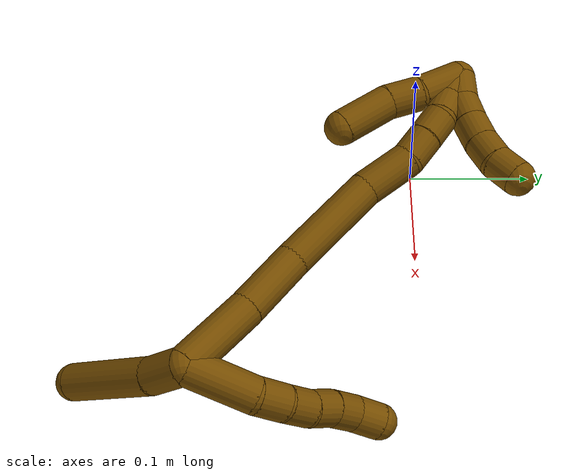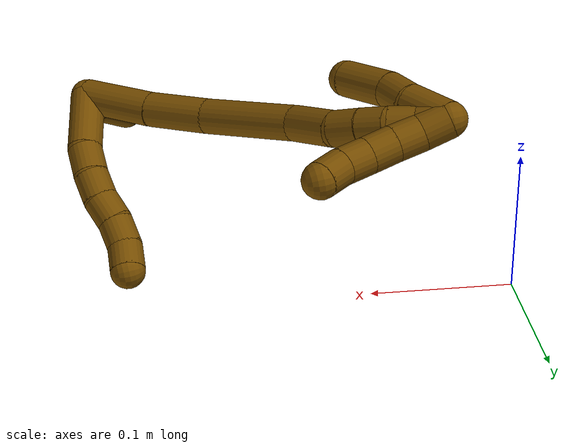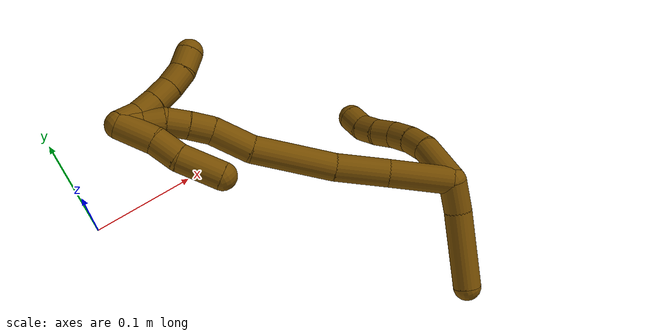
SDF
<sdf version="1.7">
 <world name="default">
  <model name="12">
   <static>0</static>
   <link name="12">
    <collision name="collision-cylinder-e_1_2_8">
     <pose>0.000995 0.023226 0.006195 -1.31014 0.041384 -0.031794</pose>
     <geometry><cylinder><radius>0.0125</radius><length>0.048117</length></cylinder></geometry>
     <surface>
      <friction><ode><mu>1.16</mu><mu2>1.16</mu2><slip1>0</slip1><slip2>0</slip2></ode></friction>
      <contact><ode><kp>1e+06</kp><kd>1</kd><max_vel>0</max_vel><min_depth>0.001</min_depth></ode></contact>
     </surface>
    </collision>
    <visual name="visual-cylinder-e_1_2_8">
     <pose>0.000995 0.023226 0.006195 -1.31014 0.041384 -0.031794</pose>
     <geometry><cylinder><radius>0.0125</radius><length>0.048117</length></cylinder></geometry>
     <material><ambient>0.466667 0.301961 0 1</ambient></material>
    </visual>
    <collision name="collision-cylinder-e_2_8_9">
     <pose>0.003528 0.057031 0.0126 -1.55088 0.144298 -0.141461</pose>
     <geometry><cylinder><radius>0.0125</radius><length>0.021385</length></cylinder></geometry>
     <surface>
      <friction><ode><mu>1.16</mu><mu2>1.16</mu2><slip1>0</slip1><slip2>0</slip2></ode></friction>
      <contact><ode><kp>1e+06</kp><kd>1</kd><max_vel>0</max_vel><min_depth>0.001</min_depth></ode></contact>
     </surface>
    </collision>
    <visual name="visual-cylinder-e_2_8_9">
     <pose>0.003528 0.057031 0.0126 -1.55088 0.144298 -0.141461</pose>
     <geometry><cylinder><radius>0.0125</radius><length>0.021385</length></cylinder></geometry>
     <material><ambient>0.466667 0.301961 0 1</ambient></material>
    </visual>
    <collision name="collision-cylinder-e_3_9_10">
     <pose>0.007686 0.07734 0.011676 -1.68692 0.261363 -0.293187</pose>
     <geometry><cylinder><radius>0.0125</radius><length>0.020279</length></cylinder></geometry>
     <surface>
      <friction><ode><mu>1.16</mu><mu2>1.16</mu2><slip1>0</slip1><slip2>0</slip2></ode></friction>
      <contact><ode><kp>1e+06</kp><kd>1</kd><max_vel>0</max_vel><min_depth>0.001</min_depth></ode></contact>
     </surface>
    </collision>
    <visual name="visual-cylinder-e_3_9_10">
     <pose>0.007686 0.07734 0.011676 -1.68692 0.261363 -0.293187</pose>
     <geometry><cylinder><radius>0.0125</radius><length>0.020279</length></cylinder></geometry>
     <material><ambient>0.466667 0.301961 0 1</ambient></material>
    </visual>
    <collision name="collision-cylinder-e_4_10_11">
     <pose>0.012548 0.096379 0.007553 -1.88144 0.22541 -0.307966</pose>
     <geometry><cylinder><radius>0.0125</radius><length>0.020063</length></cylinder></geometry>
     <surface>
      <friction><ode><mu>1.16</mu><mu2>1.16</mu2><slip1>0</slip1><slip2>0</slip2></ode></friction>
      <contact><ode><kp>1e+06</kp><kd>1</kd><max_vel>0</max_vel><min_depth>0.001</min_depth></ode></contact>
     </surface>
    </collision>
    <visual name="visual-cylinder-e_4_10_11">
     <pose>0.012548 0.096379 0.007553 -1.88144 0.22541 -0.307966</pose>
     <geometry><cylinder><radius>0.0125</radius><length>0.020063</length></cylinder></geometry>
     <material><ambient>0.466667 0.301961 0 1</ambient></material>
    </visual>
    <collision name="collision-cylinder-e_5_11_12">
     <pose>0.017376 0.115313 0.003395 -1.69164 0.260715 -0.293836</pose>
     <geometry><cylinder><radius>0.0125</radius><length>0.020068</length></cylinder></geometry>
     <surface>
      <friction><ode><mu>1.16</mu><mu2>1.16</mu2><slip1>0</slip1><slip2>0</slip2></ode></friction>
      <contact><ode><kp>1e+06</kp><kd>1</kd><max_vel>0</max_vel><min_depth>0.001</min_depth></ode></contact>
     </surface>
    </collision>
    <visual name="visual-cylinder-e_5_11_12">
     <pose>0.017376 0.115313 0.003395 -1.69164 0.260715 -0.293836</pose>
     <geometry><cylinder><radius>0.0125</radius><length>0.020068</length></cylinder></geometry>
     <material><ambient>0.466667 0.301961 0 1</ambient></material>
    </visual>
    <collision name="collision-cylinder-e_6_12_6">
     <pose>0.020694 0.134871 0.003515 -1.44185 0.072854 -0.064024</pose>
     <geometry><cylinder><radius>0.0125</radius><length>0.020088</length></cylinder></geometry>
     <surface>
      <friction><ode><mu>1.16</mu><mu2>1.16</mu2><slip1>0</slip1><slip2>0</slip2></ode></friction>
      <contact><ode><kp>1e+06</kp><kd>1</kd><max_vel>0</max_vel><min_depth>0.001</min_depth></ode></contact>
     </surface>
    </collision>
    <visual name="visual-cylinder-e_6_12_6">
     <pose>0.020694 0.134871 0.003515 -1.44185 0.072854 -0.064024</pose>
     <geometry><cylinder><radius>0.0125</radius><length>0.020088</length></cylinder></geometry>
     <material><ambient>0.466667 0.301961 0 1</ambient></material>
    </visual>
    <collision name="collision-cylinder-e_1_2_13">
     <pose>0.012838 -0.005892 -0.003412 2.09566 1.08318 1.61338</pose>
     <geometry><cylinder><radius>0.0125</radius><length>0.029064</length></cylinder></geometry>
     <surface>
      <friction><ode><mu>1.16</mu><mu2>1.16</mu2><slip1>0</slip1><slip2>0</slip2></ode></friction>
      <contact><ode><kp>1e+06</kp><kd>1</kd><max_vel>0</max_vel><min_depth>0.001</min_depth></ode></contact>
     </surface>
    </collision>
    <visual name="visual-cylinder-e_1_2_13">
     <pose>0.012838 -0.005892 -0.003412 2.09566 1.08318 1.61338</pose>
     <geometry><cylinder><radius>0.0125</radius><length>0.029064</length></cylinder></geometry>
     <material><ambient>0.466667 0.301961 0 1</ambient></material>
    </visual>
    <collision name="collision-cylinder-e_2_13_5">
     <pose>0.054271 -0.028393 -0.019648 2.22832 0.937696 1.60137</pose>
     <geometry><cylinder><radius>0.0125</radius><length>0.070936</length></cylinder></geometry>
     <surface>
      <friction><ode><mu>1.16</mu><mu2>1.16</mu2><slip1>0</slip1><slip2>0</slip2></ode></friction>
      <contact><ode><kp>1e+06</kp><kd>1</kd><max_vel>0</max_vel><min_depth>0.001</min_depth></ode></contact>
     </surface>
    </collision>
    <visual name="visual-cylinder-e_2_13_5">
     <pose>0.054271 -0.028393 -0.019648 2.22832 0.937696 1.60137</pose>
     <geometry><cylinder><radius>0.0125</radius><length>0.070936</length></cylinder></geometry>
     <material><ambient>0.466667 0.301961 0 1</ambient></material>
    </visual>
    <collision name="collision-cylinder-e_1_2_14">
     <pose>-0.007451 0.018712 -0.020153 -2.39327 -0.264599 0.653522</pose>
     <geometry><cylinder><radius>0.0125</radius><length>0.056984</length></cylinder></geometry>
     <surface>
      <friction><ode><mu>1.16</mu><mu2>1.16</mu2><slip1>0</slip1><slip2>0</slip2></ode></friction>
      <contact><ode><kp>1e+06</kp><kd>1</kd><max_vel>0</max_vel><min_depth>0.001</min_depth></ode></contact>
     </surface>
    </collision>
    <visual name="visual-cylinder-e_1_2_14">
     <pose>-0.007451 0.018712 -0.020153 -2.39327 -0.264599 0.653522</pose>
     <geometry><cylinder><radius>0.0125</radius><length>0.056984</length></cylinder></geometry>
     <material><ambient>0.466667 0.301961 0 1</ambient></material>
    </visual>
    <collision name="collision-cylinder-e_2_14_15">
     <pose>-0.022275 0.05201 -0.05792 -2.44995 -0.311855 0.822821</pose>
     <geometry><cylinder><radius>0.0125</radius><length>0.048058</length></cylinder></geometry>
     <surface>
      <friction><ode><mu>1.16</mu><mu2>1.16</mu2><slip1>0</slip1><slip2>0</slip2></ode></friction>
      <contact><ode><kp>1e+06</kp><kd>1</kd><max_vel>0</max_vel><min_depth>0.001</min_depth></ode></contact>
     </surface>
    </collision>
    <visual name="visual-cylinder-e_2_14_15">
     <pose>-0.022275 0.05201 -0.05792 -2.44995 -0.311855 0.822821</pose>
     <geometry><cylinder><radius>0.0125</radius><length>0.048058</length></cylinder></geometry>
     <material><ambient>0.466667 0.301961 0 1</ambient></material>
    </visual>
    <collision name="collision-cylinder-e_3_15_16">
     <pose>-0.044648 0.089764 -0.100876 -2.40098 -0.411891 0.987354</pose>
     <geometry><cylinder><radius>0.0125</radius><length>0.074938</length></cylinder></geometry>
     <surface>
      <friction><ode><mu>1.16</mu><mu2>1.16</mu2><slip1>0</slip1><slip2>0</slip2></ode></friction>
      <contact><ode><kp>1e+06</kp><kd>1</kd><max_vel>0</max_vel><min_depth>0.001</min_depth></ode></contact>
     </surface>
    </collision>
    <visual name="visual-cylinder-e_3_15_16">
     <pose>-0.044648 0.089764 -0.100876 -2.40098 -0.411891 0.987354</pose>
     <geometry><cylinder><radius>0.0125</radius><length>0.074938</length></cylinder></geometry>
     <material><ambient>0.466667 0.301961 0 1</ambient></material>
    </visual>
    <collision name="collision-cylinder-e_4_16_17">
     <pose>-0.069379 0.126276 -0.135638 -2.18549 -0.537228 0.976688</pose>
     <geometry><cylinder><radius>0.0125</radius><length>0.038026</length></cylinder></geometry>
     <surface>
      <friction><ode><mu>1.16</mu><mu2>1.16</mu2><slip1>0</slip1><slip2>0</slip2></ode></friction>
      <contact><ode><kp>1e+06</kp><kd>1</kd><max_vel>0</max_vel><min_depth>0.001</min_depth></ode></contact>
     </surface>
    </collision>
    <visual name="visual-cylinder-e_4_16_17">
     <pose>-0.069379 0.126276 -0.135638 -2.18549 -0.537228 0.976688</pose>
     <geometry><cylinder><radius>0.0125</radius><length>0.038026</length></cylinder></geometry>
     <material><ambient>0.466667 0.301961 0 1</ambient></material>
    </visual>
    <collision name="collision-cylinder-e_5_17_18">
     <pose>-0.084456 0.145205 -0.152697 -2.51034 -0.514318 1.35599</pose>
     <geometry><cylinder><radius>0.0125</radius><length>0.021738</length></cylinder></geometry>
     <surface>
      <friction><ode><mu>1.16</mu><mu2>1.16</mu2><slip1>0</slip1><slip2>0</slip2></ode></friction>
      <contact><ode><kp>1e+06</kp><kd>1</kd><max_vel>0</max_vel><min_depth>0.001</min_depth></ode></contact>
     </surface>
    </collision>
    <visual name="visual-cylinder-e_5_17_18">
     <pose>-0.084456 0.145205 -0.152697 -2.51034 -0.514318 1.35599</pose>
     <geometry><cylinder><radius>0.0125</radius><length>0.021738</length></cylinder></geometry>
     <material><ambient>0.466667 0.301961 0 1</ambient></material>
    </visual>
    <collision name="collision-cylinder-e_6_18_19">
     <pose>-0.094224 0.155916 -0.167799 -2.53963 -0.454263 1.28002</pose>
     <geometry><cylinder><radius>0.0125</radius><length>0.020151</length></cylinder></geometry>
     <surface>
      <friction><ode><mu>1.16</mu><mu2>1.16</mu2><slip1>0</slip1><slip2>0</slip2></ode></friction>
      <contact><ode><kp>1e+06</kp><kd>1</kd><max_vel>0</max_vel><min_depth>0.001</min_depth></ode></contact>
     </surface>
    </collision>
    <visual name="visual-cylinder-e_6_18_19">
     <pose>-0.094224 0.155916 -0.167799 -2.53963 -0.454263 1.28002</pose>
     <geometry><cylinder><radius>0.0125</radius><length>0.020151</length></cylinder></geometry>
     <material><ambient>0.466667 0.301961 0 1</ambient></material>
    </visual>
    <collision name="collision-cylinder-e_7_19_20">
     <pose>-0.100697 0.165223 -0.18413 -2.70121 -0.206372 0.866667</pose>
     <geometry><cylinder><radius>0.0125</radius><length>0.020035</length></cylinder></geometry>
     <surface>
      <friction><ode><mu>1.16</mu><mu2>1.16</mu2><slip1>0</slip1><slip2>0</slip2></ode></friction>
      <contact><ode><kp>1e+06</kp><kd>1</kd><max_vel>0</max_vel><min_depth>0.001</min_depth></ode></contact>
     </surface>
    </collision>
    <visual name="visual-cylinder-e_7_19_20">
     <pose>-0.100697 0.165223 -0.18413 -2.70121 -0.206372 0.866667</pose>
     <geometry><cylinder><radius>0.0125</radius><length>0.020035</length></cylinder></geometry>
     <material><ambient>0.466667 0.301961 0 1</ambient></material>
    </visual>
    <collision name="collision-cylinder-e_8_20_1">
     <pose>-0.106724 0.172952 -0.201504 -2.74617 -0.407187 1.60092</pose>
     <geometry><cylinder><radius>0.0125</radius><length>0.02007</length></cylinder></geometry>
     <surface>
      <friction><ode><mu>1.16</mu><mu2>1.16</mu2><slip1>0</slip1><slip2>0</slip2></ode></friction>
      <contact><ode><kp>1e+06</kp><kd>1</kd><max_vel>0</max_vel><min_depth>0.001</min_depth></ode></contact>
     </surface>
    </collision>
    <visual name="visual-cylinder-e_8_20_1">
     <pose>-0.106724 0.172952 -0.201504 -2.74617 -0.407187 1.60092</pose>
     <geometry><cylinder><radius>0.0125</radius><length>0.02007</length></cylinder></geometry>
     <material><ambient>0.466667 0.301961 0 1</ambient></material>
    </visual>
    <collision name="collision-cylinder-e_1_1_21">
     <pose>-0.105066 0.161842 -0.20227 1.08517 0.327597 0.198653</pose>
     <geometry><cylinder><radius>0.0125</radius><length>0.035013</length></cylinder></geometry>
     <surface>
      <friction><ode><mu>1.16</mu><mu2>1.16</mu2><slip1>0</slip1><slip2>0</slip2></ode></friction>
      <contact><ode><kp>1e+06</kp><kd>1</kd><max_vel>0</max_vel><min_depth>0.001</min_depth></ode></contact>
     </surface>
    </collision>
    <visual name="visual-cylinder-e_1_1_21">
     <pose>-0.105066 0.161842 -0.20227 1.08517 0.327597 0.198653</pose>
     <geometry><cylinder><radius>0.0125</radius><length>0.035013</length></cylinder></geometry>
     <material><ambient>0.466667 0.301961 0 1</ambient></material>
    </visual>
    <collision name="collision-cylinder-e_2_21_22">
     <pose>-0.094303 0.136369 -0.19129 1.2794 0.426446 0.31946</pose>
     <geometry><cylinder><radius>0.0125</radius><length>0.024801</length></cylinder></geometry>
     <surface>
      <friction><ode><mu>1.16</mu><mu2>1.16</mu2><slip1>0</slip1><slip2>0</slip2></ode></friction>
      <contact><ode><kp>1e+06</kp><kd>1</kd><max_vel>0</max_vel><min_depth>0.001</min_depth></ode></contact>
     </surface>
    </collision>
    <visual name="visual-cylinder-e_2_21_22">
     <pose>-0.094303 0.136369 -0.19129 1.2794 0.426446 0.31946</pose>
     <geometry><cylinder><radius>0.0125</radius><length>0.024801</length></cylinder></geometry>
     <material><ambient>0.466667 0.301961 0 1</ambient></material>
    </visual>
    <collision name="collision-cylinder-e_3_22_4">
     <pose>-0.080853 0.110231 -0.178063 0.993403 0.426948 0.233926</pose>
     <geometry><cylinder><radius>0.0125</radius><length>0.040186</length></cylinder></geometry>
     <surface>
      <friction><ode><mu>1.16</mu><mu2>1.16</mu2><slip1>0</slip1><slip2>0</slip2></ode></friction>
      <contact><ode><kp>1e+06</kp><kd>1</kd><max_vel>0</max_vel><min_depth>0.001</min_depth></ode></contact>
     </surface>
    </collision>
    <visual name="visual-cylinder-e_3_22_4">
     <pose>-0.080853 0.110231 -0.178063 0.993403 0.426948 0.233926</pose>
     <geometry><cylinder><radius>0.0125</radius><length>0.040186</length></cylinder></geometry>
     <material><ambient>0.466667 0.301961 0 1</ambient></material>
    </visual>
    <collision name="collision-cylinder-e_1_1_23">
     <pose>-0.108199 0.177252 -0.200354 -0.077654 0.252608 -0.009865</pose>
     <geometry><cylinder><radius>0.0125</radius><length>0.02</length></cylinder></geometry>
     <surface>
      <friction><ode><mu>1.16</mu><mu2>1.16</mu2><slip1>0</slip1><slip2>0</slip2></ode></friction>
      <contact><ode><kp>1e+06</kp><kd>1</kd><max_vel>0</max_vel><min_depth>0.001</min_depth></ode></contact>
     </surface>
    </collision>
    <visual name="visual-cylinder-e_1_1_23">
     <pose>-0.108199 0.177252 -0.200354 -0.077654 0.252608 -0.009865</pose>
     <geometry><cylinder><radius>0.0125</radius><length>0.02</length></cylinder></geometry>
     <material><ambient>0.466667 0.301961 0 1</ambient></material>
    </visual>
    <collision name="collision-cylinder-e_2_23_24">
     <pose>-0.105437 0.179744 -0.180857 -0.175042 0.026344 -0.002312</pose>
     <geometry><cylinder><radius>0.0125</radius><length>0.02</length></cylinder></geometry>
     <surface>
      <friction><ode><mu>1.16</mu><mu2>1.16</mu2><slip1>0</slip1><slip2>0</slip2></ode></friction>
      <contact><ode><kp>1e+06</kp><kd>1</kd><max_vel>0</max_vel><min_depth>0.001</min_depth></ode></contact>
     </surface>
    </collision>
    <visual name="visual-cylinder-e_2_23_24">
     <pose>-0.105437 0.179744 -0.180857 -0.175042 0.026344 -0.002312</pose>
     <geometry><cylinder><radius>0.0125</radius><length>0.02</length></cylinder></geometry>
     <material><ambient>0.466667 0.301961 0 1</ambient></material>
    </visual>
    <collision name="collision-cylinder-e_3_24_25">
     <pose>-0.105282 0.183806 -0.161286 -0.234216 -0.010863 0.001278</pose>
     <geometry><cylinder><radius>0.0125</radius><length>0.02</length></cylinder></geometry>
     <surface>
      <friction><ode><mu>1.16</mu><mu2>1.16</mu2><slip1>0</slip1><slip2>0</slip2></ode></friction>
      <contact><ode><kp>1e+06</kp><kd>1</kd><max_vel>0</max_vel><min_depth>0.001</min_depth></ode></contact>
     </surface>
    </collision>
    <visual name="visual-cylinder-e_3_24_25">
     <pose>-0.105282 0.183806 -0.161286 -0.234216 -0.010863 0.001278</pose>
     <geometry><cylinder><radius>0.0125</radius><length>0.02</length></cylinder></geometry>
     <material><ambient>0.466667 0.301961 0 1</ambient></material>
    </visual>
    <collision name="collision-cylinder-e_4_25_26">
     <pose>-0.106759 0.189041 -0.142092 -0.298566 -0.137284 0.02068</pose>
     <geometry><cylinder><radius>0.0125</radius><length>0.02</length></cylinder></geometry>
     <surface>
      <friction><ode><mu>1.16</mu><mu2>1.16</mu2><slip1>0</slip1><slip2>0</slip2></ode></friction>
      <contact><ode><kp>1e+06</kp><kd>1</kd><max_vel>0</max_vel><min_depth>0.001</min_depth></ode></contact>
     </surface>
    </collision>
    <visual name="visual-cylinder-e_4_25_26">
     <pose>-0.106759 0.189041 -0.142092 -0.298566 -0.137284 0.02068</pose>
     <geometry><cylinder><radius>0.0125</radius><length>0.02</length></cylinder></geometry>
     <material><ambient>0.466667 0.301961 0 1</ambient></material>
    </visual>
    <collision name="collision-cylinder-e_5_26_3">
     <pose>-0.110634 0.196926 -0.124318 -0.539345 -0.253301 0.070361</pose>
     <geometry><cylinder><radius>0.0125</radius><length>0.02</length></cylinder></geometry>
     <surface>
      <friction><ode><mu>1.16</mu><mu2>1.16</mu2><slip1>0</slip1><slip2>0</slip2></ode></friction>
      <contact><ode><kp>1e+06</kp><kd>1</kd><max_vel>0</max_vel><min_depth>0.001</min_depth></ode></contact>
     </surface>
    </collision>
    <visual name="visual-cylinder-e_5_26_3">
     <pose>-0.110634 0.196926 -0.124318 -0.539345 -0.253301 0.070361</pose>
     <geometry><cylinder><radius>0.0125</radius><length>0.02</length></cylinder></geometry>
     <material><ambient>0.466667 0.301961 0 1</ambient></material>
    </visual>
    <collision name="collision-sphere-3">
     <pose>-0.11314 0.201898 -0.116011 0 -0 0</pose>
     <geometry><sphere><radius>0.0125</radius></sphere></geometry>
     <surface>
      <friction><ode><mu>1.16</mu><mu2>1.16</mu2><slip1>0</slip1><slip2>0</slip2></ode></friction>
      <contact><ode><kp>1e+06</kp><kd>1</kd><max_vel>0</max_vel><min_depth>0.001</min_depth></ode></contact>
     </surface>
    </collision>
    <visual name="visual-sphere-3">
     <pose>-0.11314 0.201898 -0.116011 0 -0 0</pose>
     <geometry><sphere><radius>0.0125</radius></sphere></geometry>
     <material><ambient>0.466667 0.301961 0 1</ambient></material>
    </visual>
    <collision name="collision-sphere-26">
     <pose>-0.108128 0.191954 -0.132625 0 -0 0</pose>
     <geometry><sphere><radius>0.0125</radius></sphere></geometry>
     <surface>
      <friction><ode><mu>1.16</mu><mu2>1.16</mu2><slip1>0</slip1><slip2>0</slip2></ode></friction>
      <contact><ode><kp>1e+06</kp><kd>1</kd><max_vel>0</max_vel><min_depth>0.001</min_depth></ode></contact>
     </surface>
    </collision>
    <visual name="visual-sphere-26">
     <pose>-0.108128 0.191954 -0.132625 0 -0 0</pose>
     <geometry><sphere><radius>0.0125</radius></sphere></geometry>
     <material><ambient>0.466667 0.301961 0 1</ambient></material>
    </visual>
    <collision name="collision-sphere-25">
     <pose>-0.10539 0.186127 -0.15156 0 -0 0</pose>
     <geometry><sphere><radius>0.0125</radius></sphere></geometry>
     <surface>
      <friction><ode><mu>1.16</mu><mu2>1.16</mu2><slip1>0</slip1><slip2>0</slip2></ode></friction>
      <contact><ode><kp>1e+06</kp><kd>1</kd><max_vel>0</max_vel><min_depth>0.001</min_depth></ode></contact>
     </surface>
    </collision>
    <visual name="visual-sphere-25">
     <pose>-0.10539 0.186127 -0.15156 0 -0 0</pose>
     <geometry><sphere><radius>0.0125</radius></sphere></geometry>
     <material><ambient>0.466667 0.301961 0 1</ambient></material>
    </visual>
    <collision name="collision-sphere-24">
     <pose>-0.105173 0.181485 -0.171013 0 -0 0</pose>
     <geometry><sphere><radius>0.0125</radius></sphere></geometry>
     <surface>
      <friction><ode><mu>1.16</mu><mu2>1.16</mu2><slip1>0</slip1><slip2>0</slip2></ode></friction>
      <contact><ode><kp>1e+06</kp><kd>1</kd><max_vel>0</max_vel><min_depth>0.001</min_depth></ode></contact>
     </surface>
    </collision>
    <visual name="visual-sphere-24">
     <pose>-0.105173 0.181485 -0.171013 0 -0 0</pose>
     <geometry><sphere><radius>0.0125</radius></sphere></geometry>
     <material><ambient>0.466667 0.301961 0 1</ambient></material>
    </visual>
    <collision name="collision-sphere-23">
     <pose>-0.1057 0.178004 -0.1907 0 -0 0</pose>
     <geometry><sphere><radius>0.0125</radius></sphere></geometry>
     <surface>
      <friction><ode><mu>1.16</mu><mu2>1.16</mu2><slip1>0</slip1><slip2>0</slip2></ode></friction>
      <contact><ode><kp>1e+06</kp><kd>1</kd><max_vel>0</max_vel><min_depth>0.001</min_depth></ode></contact>
     </surface>
    </collision>
    <visual name="visual-sphere-23">
     <pose>-0.1057 0.178004 -0.1907 0 -0 0</pose>
     <geometry><sphere><radius>0.0125</radius></sphere></geometry>
     <material><ambient>0.466667 0.301961 0 1</ambient></material>
    </visual>
    <collision name="collision-sphere-4">
     <pose>-0.072533 0.094906 -0.16808 0 -0 0</pose>
     <geometry><sphere><radius>0.0125</radius></sphere></geometry>
     <surface>
      <friction><ode><mu>1.16</mu><mu2>1.16</mu2><slip1>0</slip1><slip2>0</slip2></ode></friction>
      <contact><ode><kp>1e+06</kp><kd>1</kd><max_vel>0</max_vel><min_depth>0.001</min_depth></ode></contact>
     </surface>
    </collision>
    <visual name="visual-sphere-4">
     <pose>-0.072533 0.094906 -0.16808 0 -0 0</pose>
     <geometry><sphere><radius>0.0125</radius></sphere></geometry>
     <material><ambient>0.466667 0.301961 0 1</ambient></material>
    </visual>
    <collision name="collision-sphere-22">
     <pose>-0.089174 0.125555 -0.188046 0 -0 0</pose>
     <geometry><sphere><radius>0.0125</radius></sphere></geometry>
     <surface>
      <friction><ode><mu>1.16</mu><mu2>1.16</mu2><slip1>0</slip1><slip2>0</slip2></ode></friction>
      <contact><ode><kp>1e+06</kp><kd>1</kd><max_vel>0</max_vel><min_depth>0.001</min_depth></ode></contact>
     </surface>
    </collision>
    <visual name="visual-sphere-22">
     <pose>-0.089174 0.125555 -0.188046 0 -0 0</pose>
     <geometry><sphere><radius>0.0125</radius></sphere></geometry>
     <material><ambient>0.466667 0.301961 0 1</ambient></material>
    </visual>
    <collision name="collision-sphere-21">
     <pose>-0.099433 0.147183 -0.194534 0 -0 0</pose>
     <geometry><sphere><radius>0.0125</radius></sphere></geometry>
     <surface>
      <friction><ode><mu>1.16</mu><mu2>1.16</mu2><slip1>0</slip1><slip2>0</slip2></ode></friction>
      <contact><ode><kp>1e+06</kp><kd>1</kd><max_vel>0</max_vel><min_depth>0.001</min_depth></ode></contact>
     </surface>
    </collision>
    <visual name="visual-sphere-21">
     <pose>-0.099433 0.147183 -0.194534 0 -0 0</pose>
     <geometry><sphere><radius>0.0125</radius></sphere></geometry>
     <material><ambient>0.466667 0.301961 0 1</ambient></material>
    </visual>
    <collision name="collision-sphere-1">
     <pose>-0.110699 0.176501 -0.210007 0 -0 0</pose>
     <geometry><sphere><radius>0.0125</radius></sphere></geometry>
     <surface>
      <friction><ode><mu>1.16</mu><mu2>1.16</mu2><slip1>0</slip1><slip2>0</slip2></ode></friction>
      <contact><ode><kp>1e+06</kp><kd>1</kd><max_vel>0</max_vel><min_depth>0.001</min_depth></ode></contact>
     </surface>
    </collision>
    <visual name="visual-sphere-1">
     <pose>-0.110699 0.176501 -0.210007 0 -0 0</pose>
     <geometry><sphere><radius>0.0125</radius></sphere></geometry>
     <material><ambient>0.466667 0.301961 0 1</ambient></material>
    </visual>
    <collision name="collision-sphere-12">
     <pose>0.019963 0.124937 0.002226 0 -0 0</pose>
     <geometry><sphere><radius>0.0125</radius></sphere></geometry>
     <surface>
      <friction><ode><mu>1.16</mu><mu2>1.16</mu2><slip1>0</slip1><slip2>0</slip2></ode></friction>
      <contact><ode><kp>1e+06</kp><kd>1</kd><max_vel>0</max_vel><min_depth>0.001</min_depth></ode></contact>
     </surface>
    </collision>
    <visual name="visual-sphere-12">
     <pose>0.019963 0.124937 0.002226 0 -0 0</pose>
     <geometry><sphere><radius>0.0125</radius></sphere></geometry>
     <material><ambient>0.466667 0.301961 0 1</ambient></material>
    </visual>
    <collision name="collision-sphere-11">
     <pose>0.01479 0.105688 0.004564 0 -0 0</pose>
     <geometry><sphere><radius>0.0125</radius></sphere></geometry>
     <surface>
      <friction><ode><mu>1.16</mu><mu2>1.16</mu2><slip1>0</slip1><slip2>0</slip2></ode></friction>
      <contact><ode><kp>1e+06</kp><kd>1</kd><max_vel>0</max_vel><min_depth>0.001</min_depth></ode></contact>
     </surface>
    </collision>
    <visual name="visual-sphere-11">
     <pose>0.01479 0.105688 0.004564 0 -0 0</pose>
     <geometry><sphere><radius>0.0125</radius></sphere></geometry>
     <material><ambient>0.466667 0.301961 0 1</ambient></material>
    </visual>
    <collision name="collision-sphere-10">
     <pose>0.010306 0.087069 0.010542 0 -0 0</pose>
     <geometry><sphere><radius>0.0125</radius></sphere></geometry>
     <surface>
      <friction><ode><mu>1.16</mu><mu2>1.16</mu2><slip1>0</slip1><slip2>0</slip2></ode></friction>
      <contact><ode><kp>1e+06</kp><kd>1</kd><max_vel>0</max_vel><min_depth>0.001</min_depth></ode></contact>
     </surface>
    </collision>
    <visual name="visual-sphere-10">
     <pose>0.010306 0.087069 0.010542 0 -0 0</pose>
     <geometry><sphere><radius>0.0125</radius></sphere></geometry>
     <material><ambient>0.466667 0.301961 0 1</ambient></material>
    </visual>
    <collision name="collision-sphere-9">
     <pose>0.005066 0.067611 0.012811 0 -0 0</pose>
     <geometry><sphere><radius>0.0125</radius></sphere></geometry>
     <surface>
      <friction><ode><mu>1.16</mu><mu2>1.16</mu2><slip1>0</slip1><slip2>0</slip2></ode></friction>
      <contact><ode><kp>1e+06</kp><kd>1</kd><max_vel>0</max_vel><min_depth>0.001</min_depth></ode></contact>
     </surface>
    </collision>
    <visual name="visual-sphere-9">
     <pose>0.005066 0.067611 0.012811 0 -0 0</pose>
     <geometry><sphere><radius>0.0125</radius></sphere></geometry>
     <material><ambient>0.466667 0.301961 0 1</ambient></material>
    </visual>
    <collision name="collision-sphere-2">
     <geometry><sphere><radius>0.0125</radius></sphere></geometry>
     <surface>
      <friction><ode><mu>1.16</mu><mu2>1.16</mu2><slip1>0</slip1><slip2>0</slip2></ode></friction>
      <contact><ode><kp>1e+06</kp><kd>1</kd><max_vel>0</max_vel><min_depth>0.001</min_depth></ode></contact>
     </surface>
    </collision>
    <visual name="visual-sphere-2">
     <geometry><sphere><radius>0.0125</radius></sphere></geometry>
     <material><ambient>0.466667 0.301961 0 1</ambient></material>
    </visual>
    <collision name="collision-sphere-19">
     <pose>-0.098645 0.161043 -0.175261 0 -0 0</pose>
     <geometry><sphere><radius>0.0125</radius></sphere></geometry>
     <surface>
      <friction><ode><mu>1.16</mu><mu2>1.16</mu2><slip1>0</slip1><slip2>0</slip2></ode></friction>
      <contact><ode><kp>1e+06</kp><kd>1</kd><max_vel>0</max_vel><min_depth>0.001</min_depth></ode></contact>
     </surface>
    </collision>
    <visual name="visual-sphere-19">
     <pose>-0.098645 0.161043 -0.175261 0 -0 0</pose>
     <geometry><sphere><radius>0.0125</radius></sphere></geometry>
     <material><ambient>0.466667 0.301961 0 1</ambient></material>
    </visual>
    <collision name="collision-sphere-8">
     <pose>0.001991 0.046452 0.01239 0 -0 0</pose>
     <geometry><sphere><radius>0.0125</radius></sphere></geometry>
     <surface>
      <friction><ode><mu>1.16</mu><mu2>1.16</mu2><slip1>0</slip1><slip2>0</slip2></ode></friction>
      <contact><ode><kp>1e+06</kp><kd>1</kd><max_vel>0</max_vel><min_depth>0.001</min_depth></ode></contact>
     </surface>
    </collision>
    <visual name="visual-sphere-8">
     <pose>0.001991 0.046452 0.01239 0 -0 0</pose>
     <geometry><sphere><radius>0.0125</radius></sphere></geometry>
     <material><ambient>0.466667 0.301961 0 1</ambient></material>
    </visual>
    <collision name="collision-sphere-6">
     <pose>0.021425 0.144805 0.004803 0 -0 0</pose>
     <geometry><sphere><radius>0.0125</radius></sphere></geometry>
     <surface>
      <friction><ode><mu>1.16</mu><mu2>1.16</mu2><slip1>0</slip1><slip2>0</slip2></ode></friction>
      <contact><ode><kp>1e+06</kp><kd>1</kd><max_vel>0</max_vel><min_depth>0.001</min_depth></ode></contact>
     </surface>
    </collision>
    <visual name="visual-sphere-6">
     <pose>0.021425 0.144805 0.004803 0 -0 0</pose>
     <geometry><sphere><radius>0.0125</radius></sphere></geometry>
     <material><ambient>0.466667 0.301961 0 1</ambient></material>
    </visual>
    <collision name="collision-sphere-13">
     <pose>0.025677 -0.011784 -0.006823 0 -0 0</pose>
     <geometry><sphere><radius>0.0125</radius></sphere></geometry>
     <surface>
      <friction><ode><mu>1.16</mu><mu2>1.16</mu2><slip1>0</slip1><slip2>0</slip2></ode></friction>
      <contact><ode><kp>1e+06</kp><kd>1</kd><max_vel>0</max_vel><min_depth>0.001</min_depth></ode></contact>
     </surface>
    </collision>
    <visual name="visual-sphere-13">
     <pose>0.025677 -0.011784 -0.006823 0 -0 0</pose>
     <geometry><sphere><radius>0.0125</radius></sphere></geometry>
     <material><ambient>0.466667 0.301961 0 1</ambient></material>
    </visual>
    <collision name="collision-sphere-5">
     <pose>0.082865 -0.045003 -0.032473 0 -0 0</pose>
     <geometry><sphere><radius>0.0125</radius></sphere></geometry>
     <surface>
      <friction><ode><mu>1.16</mu><mu2>1.16</mu2><slip1>0</slip1><slip2>0</slip2></ode></friction>
      <contact><ode><kp>1e+06</kp><kd>1</kd><max_vel>0</max_vel><min_depth>0.001</min_depth></ode></contact>
     </surface>
    </collision>
    <visual name="visual-sphere-5">
     <pose>0.082865 -0.045003 -0.032473 0 -0 0</pose>
     <geometry><sphere><radius>0.0125</radius></sphere></geometry>
     <material><ambient>0.466667 0.301961 0 1</ambient></material>
    </visual>
    <collision name="collision-sphere-14">
     <pose>-0.014902 0.037423 -0.040306 0 -0 0</pose>
     <geometry><sphere><radius>0.0125</radius></sphere></geometry>
     <surface>
      <friction><ode><mu>1.16</mu><mu2>1.16</mu2><slip1>0</slip1><slip2>0</slip2></ode></friction>
      <contact><ode><kp>1e+06</kp><kd>1</kd><max_vel>0</max_vel><min_depth>0.001</min_depth></ode></contact>
     </surface>
    </collision>
    <visual name="visual-sphere-14">
     <pose>-0.014902 0.037423 -0.040306 0 -0 0</pose>
     <geometry><sphere><radius>0.0125</radius></sphere></geometry>
     <material><ambient>0.466667 0.301961 0 1</ambient></material>
    </visual>
    <collision name="collision-sphere-15">
     <pose>-0.029648 0.066596 -0.075535 0 -0 0</pose>
     <geometry><sphere><radius>0.0125</radius></sphere></geometry>
     <surface>
      <friction><ode><mu>1.16</mu><mu2>1.16</mu2><slip1>0</slip1><slip2>0</slip2></ode></friction>
      <contact><ode><kp>1e+06</kp><kd>1</kd><max_vel>0</max_vel><min_depth>0.001</min_depth></ode></contact>
     </surface>
    </collision>
    <visual name="visual-sphere-15">
     <pose>-0.029648 0.066596 -0.075535 0 -0 0</pose>
     <geometry><sphere><radius>0.0125</radius></sphere></geometry>
     <material><ambient>0.466667 0.301961 0 1</ambient></material>
    </visual>
    <collision name="collision-sphere-16">
     <pose>-0.059649 0.112931 -0.126217 0 -0 0</pose>
     <geometry><sphere><radius>0.0125</radius></sphere></geometry>
     <surface>
      <friction><ode><mu>1.16</mu><mu2>1.16</mu2><slip1>0</slip1><slip2>0</slip2></ode></friction>
      <contact><ode><kp>1e+06</kp><kd>1</kd><max_vel>0</max_vel><min_depth>0.001</min_depth></ode></contact>
     </surface>
    </collision>
    <visual name="visual-sphere-16">
     <pose>-0.059649 0.112931 -0.126217 0 -0 0</pose>
     <geometry><sphere><radius>0.0125</radius></sphere></geometry>
     <material><ambient>0.466667 0.301961 0 1</ambient></material>
    </visual>
    <collision name="collision-sphere-17">
     <pose>-0.079109 0.13962 -0.145058 0 -0 0</pose>
     <geometry><sphere><radius>0.0125</radius></sphere></geometry>
     <surface>
      <friction><ode><mu>1.16</mu><mu2>1.16</mu2><slip1>0</slip1><slip2>0</slip2></ode></friction>
      <contact><ode><kp>1e+06</kp><kd>1</kd><max_vel>0</max_vel><min_depth>0.001</min_depth></ode></contact>
     </surface>
    </collision>
    <visual name="visual-sphere-17">
     <pose>-0.079109 0.13962 -0.145058 0 -0 0</pose>
     <geometry><sphere><radius>0.0125</radius></sphere></geometry>
     <material><ambient>0.466667 0.301961 0 1</ambient></material>
    </visual>
    <collision name="collision-sphere-18">
     <pose>-0.089803 0.150789 -0.160337 0 -0 0</pose>
     <geometry><sphere><radius>0.0125</radius></sphere></geometry>
     <surface>
      <friction><ode><mu>1.16</mu><mu2>1.16</mu2><slip1>0</slip1><slip2>0</slip2></ode></friction>
      <contact><ode><kp>1e+06</kp><kd>1</kd><max_vel>0</max_vel><min_depth>0.001</min_depth></ode></contact>
     </surface>
    </collision>
    <visual name="visual-sphere-18">
     <pose>-0.089803 0.150789 -0.160337 0 -0 0</pose>
     <geometry><sphere><radius>0.0125</radius></sphere></geometry>
     <material><ambient>0.466667 0.301961 0 1</ambient></material>
    </visual>
    <collision name="collision-sphere-20">
     <pose>-0.10275 0.169402 -0.193 0 -0 0</pose>
     <geometry><sphere><radius>0.0125</radius></sphere></geometry>
     <surface>
      <friction><ode><mu>1.16</mu><mu2>1.16</mu2><slip1>0</slip1><slip2>0</slip2></ode></friction>
      <contact><ode><kp>1e+06</kp><kd>1</kd><max_vel>0</max_vel><min_depth>0.001</min_depth></ode></contact>
     </surface>
    </collision>
    <visual name="visual-sphere-20">
     <pose>-0.10275 0.169402 -0.193 0 -0 0</pose>
     <geometry><sphere><radius>0.0125</radius></sphere></geometry>
     <material><ambient>0.466667 0.301961 0 1</ambient></material>
    </visual>
    <inertial>
     <pose>-0.039797 0.09182 -0.088855 0 -0 0</pose>
     <mass>0.75</mass>
     <inertia>
      <ixx>0.000163</ixx>
      <ixy>0</ixy>
      <ixz>0</ixz>
      <iyy>0.000117</iyy>
      <iyz>0</iyz>
      <izz>-5.6e-05</izz>
     </inertia>
    </inertial>
   </link>
   <pose>0.287271 -0.15282 0.093016 -1.84756 1.11995 -1.69247</pose>
  </model>
 </world>
</sdf>
